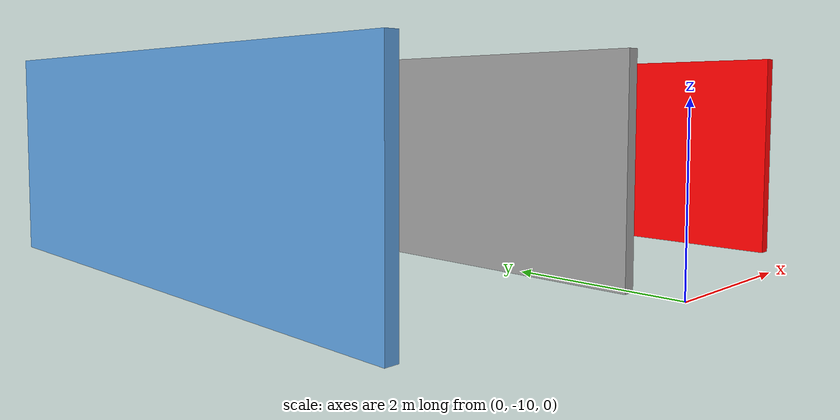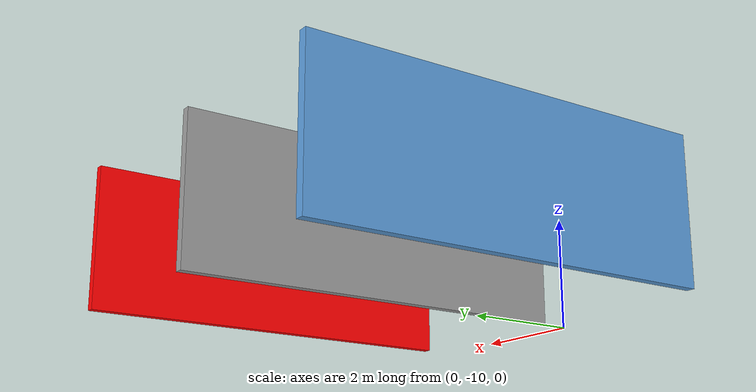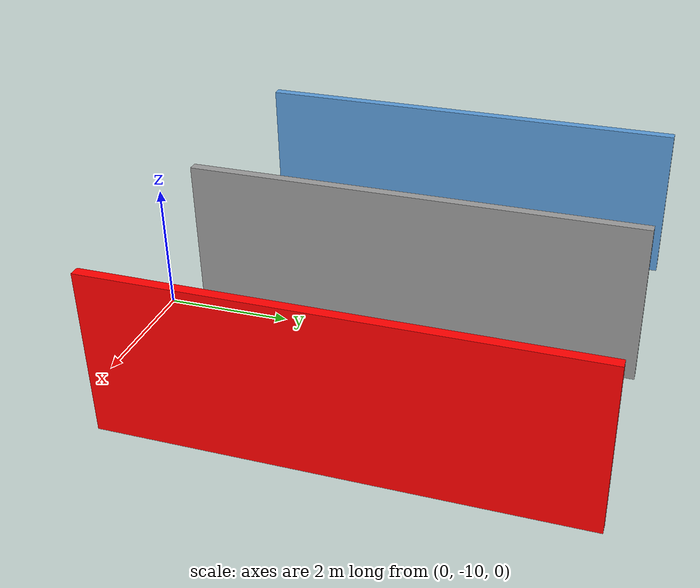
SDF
<?xml version='1.0'?>
<sdf version='1.7'>
  <model name='Corridor'>
    <pose>-0.069335 -4.7119 0 0 -0 0</pose>
    <link name='Wall_5'>
      <collision name='Wall_5_Collision'>
        <geometry>
          <box>
            <size>7 0.15 2.5</size>
          </box>
        </geometry>
        <pose>0 0 1.25 0 -0 0</pose>
      </collision>
      <visual name='Wall_5_Visual'>
        <pose>0 0 1.25 0 -0 0</pose>
        <geometry>
          <box>
            <size>7 0.15 2.5</size>
          </box>
        </geometry>
        <material>
          <script>
            <uri>file://media/materials/scripts/gazebo.material</uri>
            <name>Gazebo/Grey</name>
          </script>
          <ambient>0.352941 0.603922 0.843137 1</ambient>
        </material>
        <meta>
          <layer>0</layer>
        </meta>
      </visual>
      <pose>-3.35 -1.2119 0 0 -0 1.5708</pose>
    </link>
    <link name='Wall_7'>
      <collision name='Wall_7_Collision'>
        <geometry>
          <box>
            <size>7 0.15 2.5</size>
          </box>
        </geometry>
        <pose>0 0 1.25 0 -0 0</pose>
      </collision>
      <visual name='Wall_7_Visual'>
        <pose>0 0 1.25 0 -0 0</pose>
        <geometry>
          <box>
            <size>7 0.15 2.5</size>
          </box>
        </geometry>
        <material>
          <script>
            <uri>file://media/materials/scripts/gazebo.material</uri>
            <name>Gazebo/Grey</name>
          </script>
          <ambient>1 1 1 1</ambient>
        </material>
        <meta>
          <layer>0</layer>
        </meta>
      </visual>
      <pose>0 -1.2119 0 0 -0 -1.5708</pose>
    </link>
    <link name='Wall_9'>
      <collision name='Wall_9_Collision'>
        <geometry>
          <box>
            <size>7 0.15 2.5</size>
          </box>
        </geometry>
        <pose>0 0 1.25 0 -0 0</pose>
      </collision>
      <visual name='Wall_9_Visual'>
        <pose>0 0 1.25 0 -0 0</pose>
        <geometry>
          <box>
            <size>7 0.15 2.5</size>
          </box>
        </geometry>
        <material>
          <script>
            <uri>file://media/materials/scripts/gazebo.material</uri>
            <name>Gazebo/Grey</name>
          </script>
          <ambient>1 0 0 1</ambient>
        </material>
        <meta>
          <layer>0</layer>
        </meta>
      </visual>
      <pose>3.35 -1.2119 0 0 -0 1.5708</pose>
    </link>
    <static>1</static>
  </model>
</sdf>
